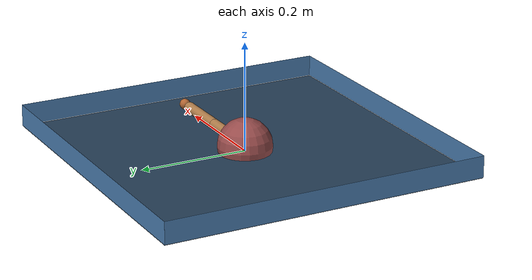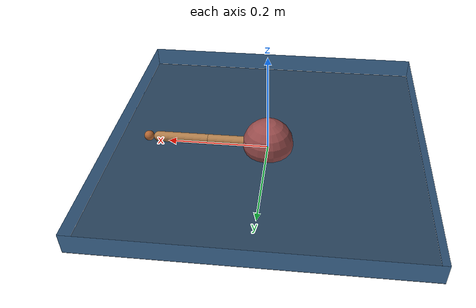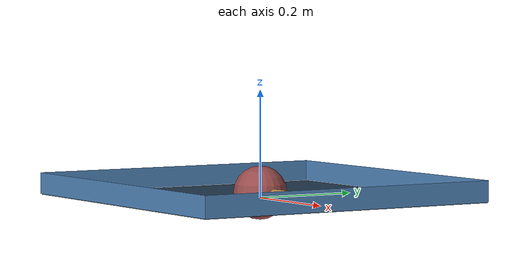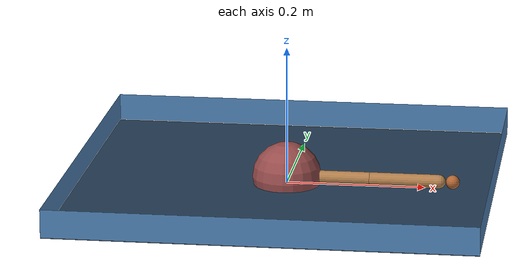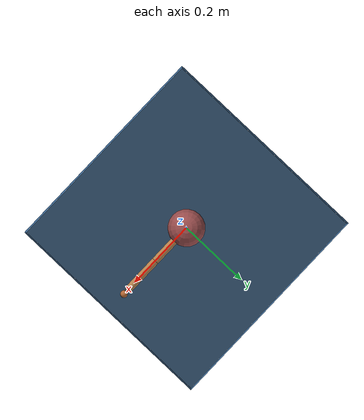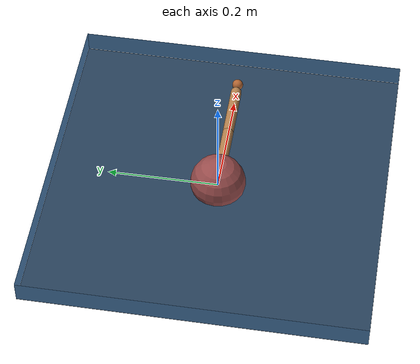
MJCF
<mujoco model="two-link planar reacher">
  <include file="./common/skybox.xml"/>
  <include file="./common/visual.xml"/>
  <include file="./common/materials.xml"/>
  <asset>
    <texture name="grid" type="2d" builtin="checker" rgb1=".1 .2 .3" rgb2=".2 .3 .4" width="300" height="300" mark="edge" markrgb=".2 .3 .4"/>
    <material name="grid" texture="grid" texrepeat="1 1" texuniform="true" reflectance=".2"/>
    <material name="self" rgba=".7 .5 .3 1"/>
    <material name="self_default" rgba=".7 .5 .3 1"/>
    <material name="self_highlight" rgba="0 .5 .3 1"/>
    <material name="effector" rgba=".7 .4 .2 1"/>
    <material name="effector_default" rgba=".7 .4 .2 1"/>
    <material name="effector_highlight" rgba="0 .5 .3 1"/>
    <material name="decoration" rgba=".3 .5 .7 1"/>
    <material name="eye" rgba="0 .2 1 1"/>
    <material name="target" rgba=".6 .3 .3 1"/>
    <material name="target_default" rgba=".6 .3 .3 1"/>
    <material name="target_highlight" rgba=".6 .3 .3 .4"/>
    <material name="site" rgba=".5 .5 .5 .3"/>
  </asset>
  <option timestep="0.02">
    <flag contact="disable"/>
  </option>

  <default>
    <joint type="hinge" axis="0 0 1" damping="0.01"/>
    <motor gear=".05" ctrlrange="-1 1" ctrllimited="true"/>
  </default>

  <worldbody>
    <light name="light" pos="0 0 1"/>
    <camera name="fixed" pos="0 0 .75" quat="1 0 0 0"/>
    <!-- Arena -->
    <geom name="ground" type="plane" pos="0 0 0" size=".3 .3 10" material="grid"/>
    <geom name="wall_x" type="plane" pos="-.3 0 .02" zaxis="1 0 0"  size=".02 .3 .02" material="decoration"/>
    <geom name="wall_y" type="plane" pos="0 -.3 .02" zaxis="0 1 0"  size=".3 .02 .02" material="decoration"/>
    <geom name="wall_neg_x" type="plane" pos=".3 0 .02" zaxis="-1 0 0"  size=".02 .3 .02" material="decoration"/>
    <geom name="wall_neg_y" type="plane" pos="0 .3 .02" zaxis="0 -1 0"  size=".3 .02 .02" material="decoration"/>

    <!-- Arm -->
    <geom name="root" type="cylinder" fromto="0 0 0 0 0 0.02" size=".011" material="decoration"/>
    <body name="arm" pos="0 0 .01">
      <geom name="arm" type="capsule" fromto="0 0 0 0.12 0 0" size=".01" material="self"/>
      <joint name="shoulder"/>
      <body name="hand" pos=".12 0 0">
        <geom name="hand" type="capsule" fromto="0 0 0 0.1 0 0" size=".01" material="self"/>
        <joint name="wrist" limited="true" range="-160 160"/>
        <body name="finger" pos=".12 0 0">
          <camera name="hand" pos="0 0 .2" mode="track"/>
          <geom name="finger" type="sphere" size=".01" material="effector"/>
        </body>
      </body>
    </body>
    <!-- Target -->
    <geom name="target" pos="0 0 .01" material="target" type="sphere" size=".05"/>
  </worldbody>

  <actuator>
    <motor name="shoulder" joint="shoulder"/>
    <motor name="wrist" joint="wrist"/>
  </actuator>
</mujoco>

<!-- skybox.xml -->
<mujoco>
  <asset>
      <texture name="skybox" type="skybox" builtin="gradient" rgb1=".4 .6 .8" rgb2="0 0 0"
               width="800" height="800" mark="random" markrgb="1 1 1"/>
  </asset>
</mujoco>

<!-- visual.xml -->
<mujoco>
  <visual>
    <headlight ambient=".4 .4 .4" diffuse=".8 .8 .8" specular="0.1 0.1 0.1"/>
    <map znear=".01"/>
    <quality shadowsize="2048"/>
  </visual>
</mujoco>

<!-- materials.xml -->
<!--
Common textures, colors and materials to be used throughout this suite. Some
materials such as xxx_highlight are activated on occurence of certain events,
for example receiving a positive reward.
-->
<mujoco>
  <asset>
    <texture name="grid" type="2d" builtin="checker" rgb1=".1 .2 .3" rgb2=".2 .3 .4" width="300" height="300" mark="edge" markrgb=".2 .3 .4"/>
    <material name="grid" texture="grid" texrepeat="1 1" texuniform="true" reflectance=".2"/>
    <material name="self" rgba=".7 .5 .3 1"/>
    <material name="self_default" rgba=".7 .5 .3 1"/>
    <material name="self_highlight" rgba="0 .5 .3 1"/>
    <material name="effector" rgba=".7 .4 .2 1"/>
    <material name="effector_default" rgba=".7 .4 .2 1"/>
    <material name="effector_highlight" rgba="0 .5 .3 1"/>
    <material name="decoration" rgba=".3 .5 .7 1"/>
    <material name="eye" rgba="0 .2 1 1"/>
    <material name="target" rgba=".6 .3 .3 1"/>
    <material name="target_default" rgba=".6 .3 .3 1"/>
    <material name="target_highlight" rgba=".6 .3 .3 .4"/>
    <material name="site" rgba=".5 .5 .5 .3"/>
  </asset>
</mujoco>
